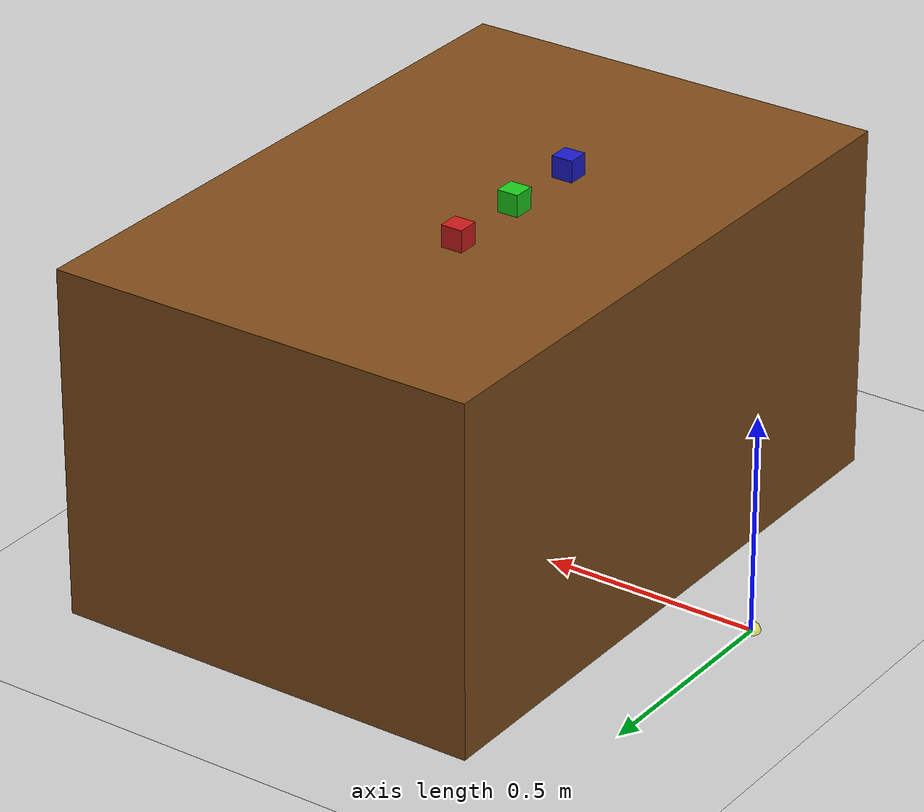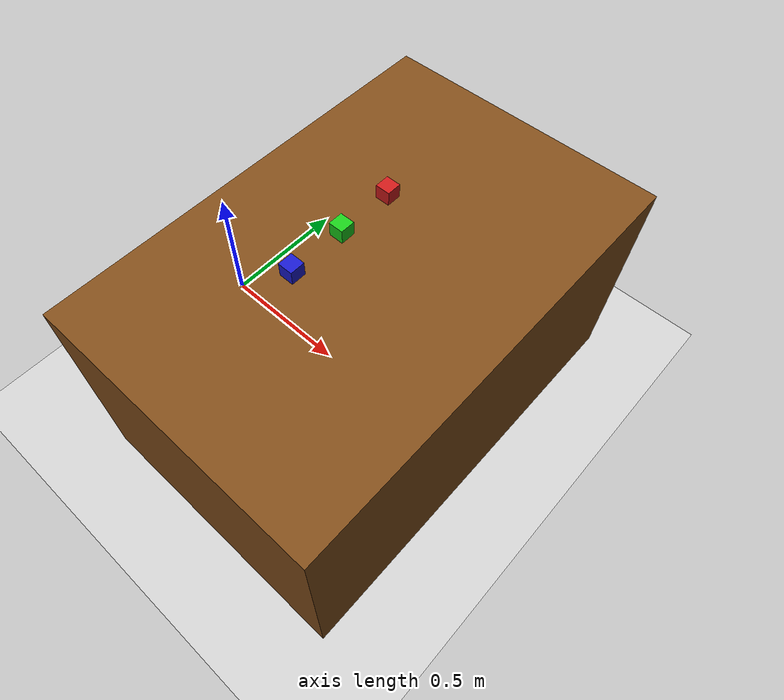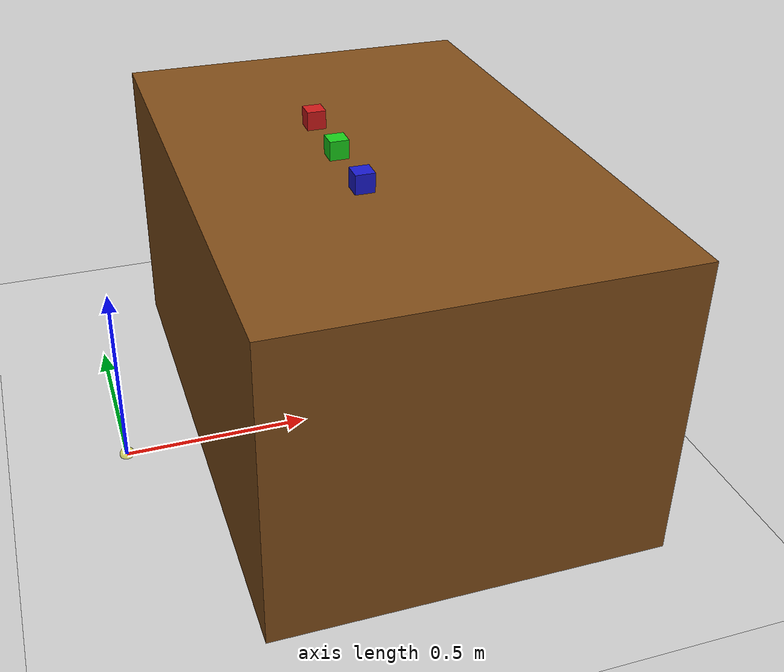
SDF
<?xml version="1.0" ?>
<sdf version="1.8">
  <world name="franka_world">
    <!-- Physics configuration -->
    <physics name="default_physics" type="ode">
      <max_step_size>0.001</max_step_size>
      <real_time_factor>1</real_time_factor>
      <real_time_update_rate>1000</real_time_update_rate>
      <gravity>0 0 -9.81</gravity>
    </physics>

    <!-- Lighting -->
    <light name="sun" type="directional">
      <cast_shadows>true</cast_shadows>
      <pose>0 0 10 0 0 0</pose>
      <diffuse>0.8 0.8 0.8 1</diffuse>
      <specular>0.2 0.2 0.2 1</specular>
      <direction>-0.5 0.1 -0.9</direction>
    </light>

    <!-- Ground plane -->
    <model name="ground_plane">
      <static>true</static>
      <link name="link">
        <collision name="collision">
          <geometry>
            <plane>
              <normal>0 0 1</normal>
            </plane>
          </geometry>
          <surface>
            <friction>
              <ode>
                <mu>100</mu>
                <mu2>50</mu2>
              </ode>
            </friction>
          </surface>
        </collision>
        <visual name="visual">
          <geometry>
            <plane>
              <normal>0 0 1</normal>
              <size>100 100</size>
            </plane>
          </geometry>
          <material>
            <ambient>0.8 0.8 0.8 1</ambient>
            <diffuse>0.8 0.8 0.8 1</diffuse>
            <specular>0.8 0.8 0.8 1</specular>
          </material>
        </visual>
      </link>
    </model>

    <!-- Table -->
    <model name="table">
      <static>true</static>
      <pose>0.7 0 0.4 0 0 0</pose>
      <link name="table_link">
        <collision name="table_collision">
          <geometry>
            <box>
              <size>1.0 1.5 0.8</size>
            </box>
          </geometry>
        </collision>
        <visual name="table_visual">
          <geometry>
            <box>
              <size>1.0 1.5 0.8</size>
            </box>
          </geometry>
          <material>
            <ambient>0.5 0.3 0.1 1</ambient>
            <diffuse>0.5 0.3 0.1 1</diffuse>
            <specular>0.1 0.1 0.1 1</specular>
          </material>
        </visual>
      </link>
    </model>

    <!-- Pick and Place objects -->
    <model name="cube_red">
      <pose>0.6 0.2 0.825 0 0 0</pose>
      <link name="cube_link">
        <inertial>
          <mass>0.1</mass>
          <inertia>
            <ixx>0.00016667</ixx>
            <ixy>0</ixy>
            <ixz>0</ixz>
            <iyy>0.00016667</iyy>
            <iyz>0</iyz>
            <izz>0.00016667</izz>
          </inertia>
        </inertial>
        <collision name="cube_collision">
          <geometry>
            <box>
              <size>0.05 0.05 0.05</size>
            </box>
          </geometry>
          <surface>
            <friction>
              <ode>
                <mu>1.0</mu>
                <mu2>1.0</mu2>
              </ode>
            </friction>
          </surface>
        </collision>
        <visual name="cube_visual">
          <geometry>
            <box>
              <size>0.05 0.05 0.05</size>
            </box>
          </geometry>
          <material>
            <ambient>0.8 0.1 0.1 1</ambient>
            <diffuse>0.8 0.1 0.1 1</diffuse>
            <specular>0.2 0.2 0.2 1</specular>
          </material>
        </visual>
      </link>
    </model>

    <model name="cube_blue">
      <pose>0.6 -0.2 0.825 0 0 0</pose>
      <link name="cube_link">
        <inertial>
          <mass>0.1</mass>
          <inertia>
            <ixx>0.00016667</ixx>
            <ixy>0</ixy>
            <ixz>0</ixz>
            <iyy>0.00016667</iyy>
            <iyz>0</iyz>
            <izz>0.00016667</izz>
          </inertia>
        </inertial>
        <collision name="cube_collision">
          <geometry>
            <box>
              <size>0.05 0.05 0.05</size>
            </box>
          </geometry>
          <surface>
            <friction>
              <ode>
                <mu>1.0</mu>
                <mu2>1.0</mu2>
              </ode>
            </friction>
          </surface>
        </collision>
        <visual name="cube_visual">
          <geometry>
            <box>
              <size>0.05 0.05 0.05</size>
            </box>
          </geometry>
          <material>
            <ambient>0.1 0.1 0.8 1</ambient>
            <diffuse>0.1 0.1 0.8 1</diffuse>
            <specular>0.2 0.2 0.2 1</specular>
          </material>
        </visual>
      </link>
    </model>

    <model name="cube_green">
      <pose>0.6 0 0.825 0 0 0</pose>
      <link name="cube_link">
        <inertial>
          <mass>0.1</mass>
          <inertia>
            <ixx>0.00016667</ixx>
            <ixy>0</ixy>
            <ixz>0</ixz>
            <iyy>0.00016667</iyy>
            <iyz>0</iyz>
            <izz>0.00016667</izz>
          </inertia>
        </inertial>
        <collision name="cube_collision">
          <geometry>
            <box>
              <size>0.05 0.05 0.05</size>
            </box>
          </geometry>
          <surface>
            <friction>
              <ode>
                <mu>1.0</mu>
                <mu2>1.0</mu2>
              </ode>
            </friction>
          </surface>
        </collision>
        <visual name="cube_visual">
          <geometry>
            <box>
              <size>0.05 0.05 0.05</size>
            </box>
          </geometry>
          <material>
            <ambient>0.1 0.8 0.1 1</ambient>
            <diffuse>0.1 0.8 0.1 1</diffuse>
            <specular>0.2 0.2 0.2 1</specular>
          </material>
        </visual>
      </link>
    </model>

    <!-- FRANKA robot spawn location marker -->
    <!-- The actual robot will be spawned via launch file -->
    <model name="franka_spawn_location">
      <static>true</static>
      <pose>0 0 0 0 0 0</pose>
      <link name="marker">
        <visual name="marker_visual">
          <geometry>
            <sphere>
              <radius>0.02</radius>
            </sphere>
          </geometry>
          <material>
            <ambient>1 1 0 0.5</ambient>
            <diffuse>1 1 0 0.5</diffuse>
          </material>
        </visual>
      </link>
    </model>

  </world>
</sdf>
